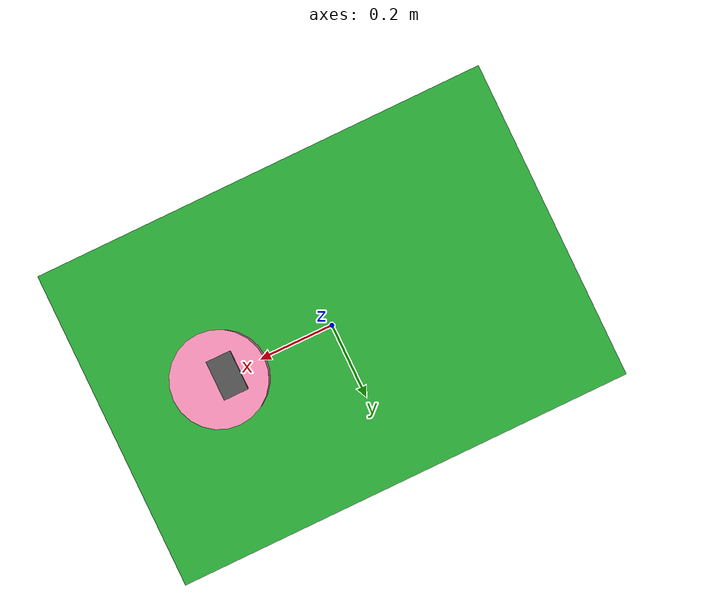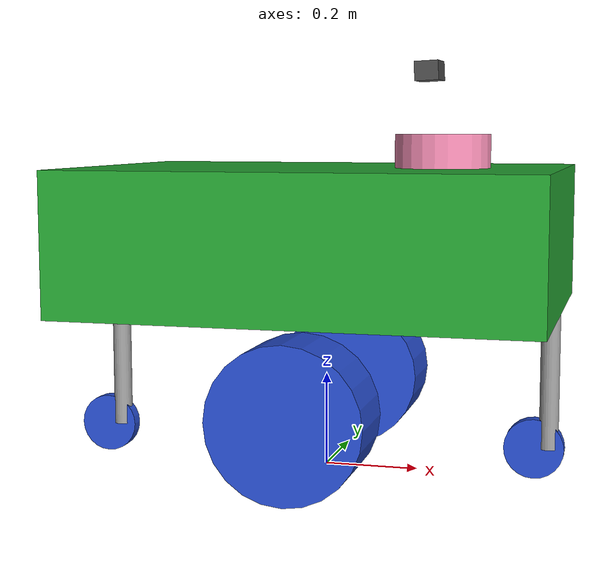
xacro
<?xml version="1.0"?>
<robot name="autonomous_robot" xmlns:xacro="http://www.ros.org/wiki/xacro">

    <xacro:include filename="common_properties.xacro" />
    <xacro:include filename="mobile_robot.xacro" />
    <xacro:include filename="lidar.xacro" />
    <xacro:include filename="camera.xacro" />
    <xacro:include filename="ros2_control.xacro" />
    <xacro:include filename="gazebo_color.xacro" />
</robot>

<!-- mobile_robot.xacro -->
<robot xmlns:xacro="http://www.ros.org/wiki/xacro">

    <xacro:property name="wheel_r" value="0.16" /> <!-- without load the wheel diameter is 0.35 (radius = 0.175) so might go between 0.16 - 0.17 with standard load -->
    <xacro:property name="wheel_l" value="0.16" />
    <xacro:property name="wheel_axis_h" value="0.18802" />

    <xacro:property name="hinge_l" value="${wheel_r - small_wheel_r + wheel_axis_h}" />
    <xacro:property name="hinge_r" value="0.02" />

    <xacro:property name="small_wheel_r" value="0.063" />
    <xacro:property name="small_wheel_l" value="0.028" />
    <xacro:property name="axis_dist" value="0.03" />

    <xacro:property name="base_l" value="1.0" />
    <xacro:property name="base_w" value="0.7" />
    <xacro:property name="base_h" value="0.3" />
    <xacro:property name="base_xyz" value="0 0 0" /> <!-- ${base_h / 2} : what z used to be -->
    <xacro:property name="wheel_rpy" value="${pi / 2.0} 0 0" />

    <xacro:property name="camera_l" value="0.01" />
    <xacro:property name="camera_w" value="0.1" />
    <xacro:property name="camera_h" value="0.05" />

    <!-- body -->

    <link name="base_footprint" />

    <link name="base_link">
        <visual>
            <geometry>
                <box size="${base_l} ${base_w} ${base_h}" />
            </geometry>
            <origin xyz="${base_xyz}" rpy="0 0 0" />
            <material name="green" />
        </visual>
        <collision>
            <geometry>
                <box size="${base_l} ${base_w} ${base_h}" />
            </geometry>
            <origin xyz="${base_xyz}" rpy="0 0 0" />
        </collision>
        <xacro:box_inertia mass="25.0" l="${2*base_l}" w="${2*base_w}" h="${2*base_h}" xyz="${base_xyz}" rpy="0 0 0" />
    </link>

    <joint name="footprint_base_joint" type="fixed">
        <parent link="base_footprint" />
        <child link="base_link" />
        <origin xyz="0 0 ${wheel_r + wheel_axis_h + (base_h / 2.0)}" rpy="0 0 0" /> <!-- + (base_h / 2) -->
    </joint>

    <!-- wheel funtions -->

    <xacro:macro name="create_wheel_link" params="prefix">

    <link name="${prefix}_wheel_link">
        <visual>
            <geometry>
                <cylinder radius="${wheel_r}" length="${wheel_l}" />
            </geometry>
            <origin xyz="0 0 0" rpy="${wheel_rpy}" />
            <material name="blue" />
        </visual>
        <collision>
            <geometry>
                <cylinder radius="${wheel_r}" length="${wheel_l}" />
            </geometry>
            <origin xyz="0 0 0" rpy="${wheel_rpy}" />
        </collision>
        <xacro:wheel_inertia mass="3.0" l="${2*wheel_l}" r="${2*wheel_r}" xyz="0 0 0" rpy="${wheel_rpy}" />
    </link>

    </xacro:macro>

    <xacro:macro name="create_small_wheel_link" params="prefix">

    <link name="${prefix}_wheel_link">
        <visual>
            <geometry>
                <cylinder radius="${small_wheel_r}" length="${small_wheel_l}" />
            </geometry>
            <origin xyz="0 0 0" rpy="${wheel_rpy}" />
            <material name="blue" />
        </visual>
        <collision>
            <geometry>
                <cylinder radius="${small_wheel_r}" length="${small_wheel_l}" />
            </geometry>
            <origin xyz="0 0 0" rpy="${wheel_rpy}" />
        </collision>
        <xacro:wheel_inertia mass="1.5" l="${2*small_wheel_l}" r="${2*small_wheel_r}" xyz="0 0 0" rpy="${wheel_rpy}" />
    </link>

    </xacro:macro>

    <!-- wheels creations -->

    <xacro:create_wheel_link prefix="left" />

    <joint name="left_wheel_joint" type="continuous">
        <parent link="base_link" />
        <child link="left_wheel_link" />
        <origin xyz="0 ${(base_w - wheel_r) / 2} ${-(base_h / 2) - wheel_axis_h}" rpy="0 0 0" />
        <axis xyz="0 1 0" />
        <limit velocity="100.0" effort="100.0" />
    </joint>

    <xacro:create_wheel_link prefix="right" />

    <joint name="right_wheel_joint" type="continuous">
        <parent link="base_link" />
        <child link="right_wheel_link" />
        <origin xyz="0 ${-((base_w - wheel_r) / 2)} ${-(base_h / 2) - wheel_axis_h}" rpy="0 0 0" />
         <axis xyz="0 1 0" />
    </joint>

    <!-- Front -->

    <link name="front_hinge">
        <visual>
            <geometry>
                <cylinder radius="${hinge_r}" length="${hinge_l}" />
            </geometry>
            <origin xyz="0 0 ${hinge_l / 2.0}" rpy="0 0 0" />
            <material name="grey" />
        </visual>
        <collision>
            <geometry>
                <cylinder radius="${hinge_r}" length="${hinge_l}" />
            </geometry>
            <origin xyz="0 0 ${hinge_l / 2.0}" rpy="0 0 0" />
        </collision>
        <xacro:wheel_inertia mass="0.5" l="${2*hinge_l}" r="${2*hinge_r}" xyz="0 0 ${hinge_l / 2.0}" rpy="0 0 0" />
    </link>

    <joint name="front_hinge_joint" type="continuous">
        <parent link="base_link" />
        <child link="front_hinge" />
        <origin xyz="0.48 0 ${-((base_h / 2.0) + wheel_r - small_wheel_r + wheel_axis_h)}" rpy="0 0 0" />
        <axis xyz="0 0 1" />
    </joint>

    <xacro:create_small_wheel_link prefix="front" />

    <joint name="front_wheel_joint" type="continuous">
        <parent link="front_hinge" />
        <child link="front_wheel_link" />
        <origin xyz="${-axis_dist} 0 0" rpy="0 0 0" />
        <axis xyz="0 1 0" />
    </joint>

    <!-- Rear -->

    <link name="rear_hinge">
        <visual>
            <geometry>
                <cylinder radius="${hinge_r}" length="${hinge_l}" />
            </geometry>
            <origin xyz="0 0 ${(hinge_l) / 2.0}" rpy="0 0 0" />
            <material name="grey" />
        </visual>
        <collision>
            <geometry>
                <cylinder radius="${hinge_r}" length="${hinge_l}" />
            </geometry>
            <origin xyz="0 0 ${(hinge_l) / 2.0}" rpy="0 0 0" />
        </collision>
        <xacro:wheel_inertia mass="0.5" l="${2*hinge_l}" r="${2*hinge_r}" xyz="0 0 ${(hinge_l) / 2.0}" rpy="0 0 0" />
    </link>

    <joint name="rear_hinge_joint" type="continuous">
        <parent link="base_link" />
        <child link="rear_hinge" />
        <origin xyz="-0.48 0 ${-((base_h / 2) + wheel_r - small_wheel_r + wheel_axis_h)}" rpy="0 0 0" />
        <axis xyz="0 0 1" />
    </joint>

    <xacro:create_small_wheel_link prefix="rear" />

    <joint name="rear_wheel_joint" type="continuous">
        <parent link="rear_hinge" />
        <child link="rear_wheel_link" />
        <origin xyz="${-axis_dist} 0 0" rpy="0 0 0" />
         <axis xyz="0 1 0" />
    </joint>

</robot>

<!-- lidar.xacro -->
<robot xmlns:xacro="http://www.ros.org/wiki/xacro">

    <xacro:property name="lidar_radius" value="0.10" /><!--   was 0.05       -->
    <xacro:property name="lidar_h" value="0.07" /> <!--   was 0.04       -->

    <!--   Lidar        -->

    <link name="lidar_link">
        <visual>
            <geometry>
                <cylinder radius="${lidar_radius}" length="${lidar_h}" />
            </geometry>
            <material name="pink" />
        </visual>
        <collision>
            <geometry>
                <box radius="${lidar_radius}" length="${lidar_h}" />
            </geometry>
        </collision>
        <xacro:wheel_inertia mass="0.1" l="${2*lidar_h}" r="${2*lidar_radius}" xyz="0 0 0" rpy="0 0 0" />
    </link>

    <joint name="base_lidar_joint" type="fixed">
        <parent link="base_link" />
        <child link="lidar_link" />
        <origin xyz="${base_l / 4.0} 0 ${(base_h / 2.0) + (lidar_h / 2.0)}" rpy="0 0 0" />
    </joint>

    <gazebo reference ="lidar_link">
        <sensor name="laser_link" type="ray">
            <pose> 0 0 0 0 0 0 </pose>
            <visualize>true</visualize>
            <update_rate>5.0</update_rate>
            <ray>
                <scan>
                    <horizontal>
                        <samples>90</samples>
                        <min_angle>-3.14</min_angle>
                        <max_angle>3.14</max_angle>
                    </horizontal>
                </scan>
                <range>
                    <min>0.3</min>
                    <max>10</max>
                </range>
            </ray>
            <plugin name="laser_controller" filename="libgazebo_ros_ray_sensor.so">
                <ros>
                    <argument>~/out:=scan</argument> <!--   the topic we are publishing on    -->
                </ros>
                <output_type>sensor_msgs/LaserScan</output_type>
                <frame_name>lidar_link</frame_name>
            </plugin>
        </sensor>
    </gazebo>

    <!-- ${-(pi) / 12.0 * 11} = -2.87979327-->

</robot>

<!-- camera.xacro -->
<robot xmlns:xacro="http://www.ros.org/wiki/xacro">

  <!-- Camera Link (Physical) -->
  <link name="camera_link">
    <visual>
      <origin xyz="0 0 0" rpy="0 0 0"/>
      <geometry>
        <box size="0.05 0.08 0.04"/>
      </geometry>
      <material name="dark_grey"/>
    </visual>
    <collision>
      <origin xyz="0 0 0" rpy="0 0 0"/>
      <geometry>
        <box size="0.05 0.08 0.04"/>
      </geometry>
    </collision>
    <inertial>
      <mass value="0.08"/>
      <inertia ixx="0.00005" ixy="0" ixz="0" iyy="0.00003" iyz="0" izz="0.00005"/>
    </inertial>
  </link>

  <joint name="camera_joint" type="fixed">
    <parent link="base_link"/>
    <child link="camera_link"/>
    <origin xyz="0.22 0 0.35" rpy="0 -0.05 0"/>
  </joint>

  <!-- Camera Optical Link (Standard ROS / OpenCV frame: Z forward, X right, Y down) -->
  <link name="camera_optical_link"/>

  <joint name="camera_optical_joint" type="fixed">
    <parent link="camera_link"/>
    <child link="camera_optical_link"/>
    <origin xyz="0 0 0" rpy="-1.5707963 0 -1.5707963"/>
  </joint>

  <gazebo reference="camera_link">
    <sensor type="camera" name="camera_sensor">
      <pose>0 0 0 0 0 0</pose>
      <always_on>true</always_on>
      <update_rate>30</update_rate>
      <visualize>true</visualize>
      <topic>/camera/image_raw</topic>
      <gz_frame_id>camera_optical_link</gz_frame_id>
      <camera>
        <camera_info_topic>/camera/camera_info</camera_info_topic>
        <horizontal_fov>1.15</horizontal_fov>
        <image>
          <width>640</width>
          <height>480</height>
          <format>R8G8B8</format>
        </image>
        <clip>
          <near>0.08</near>
          <far>25.0</far>
        </clip>
        <noise>
          <type>gaussian</type>
          <mean>0.0</mean>
          <stddev>0.005</stddev>
        </noise>
      </camera>
    </sensor>
  </gazebo>

</robot>
